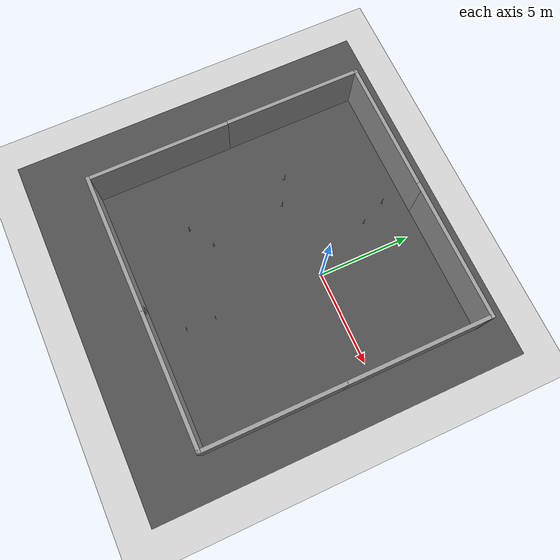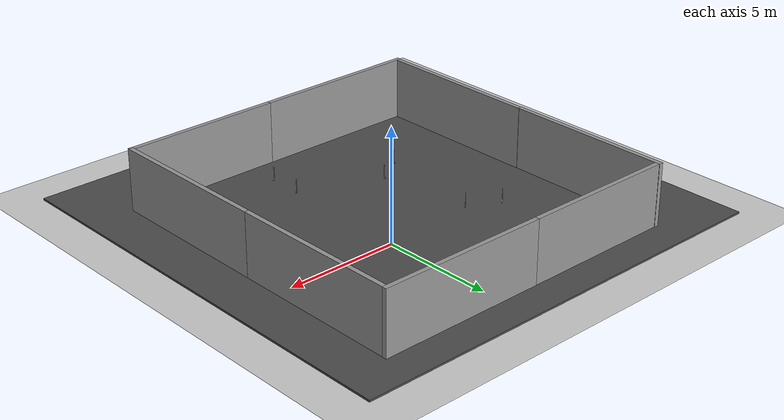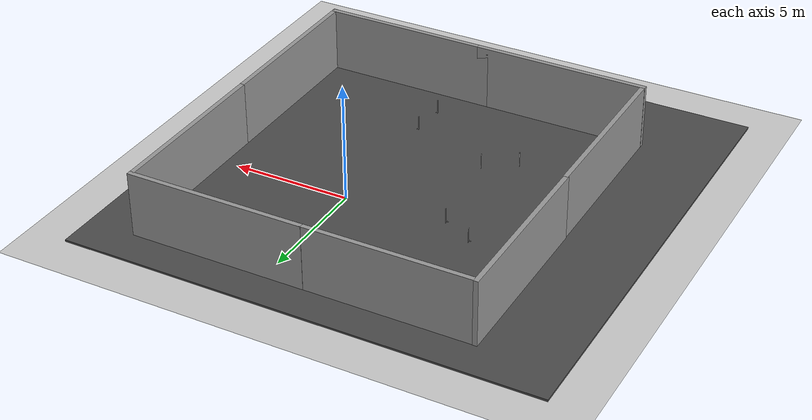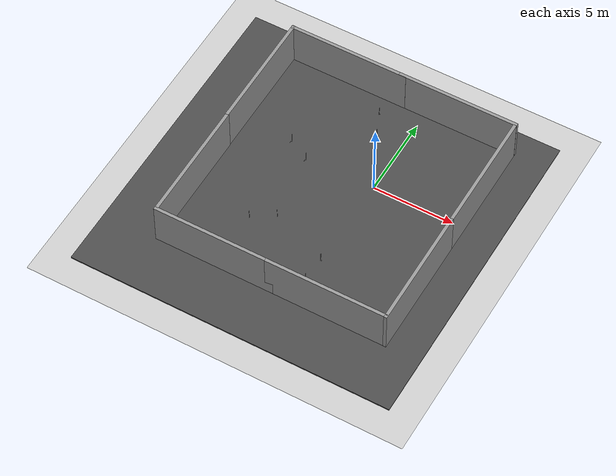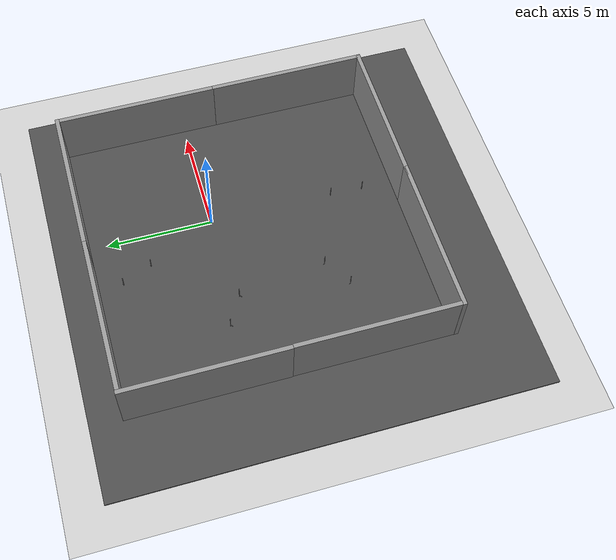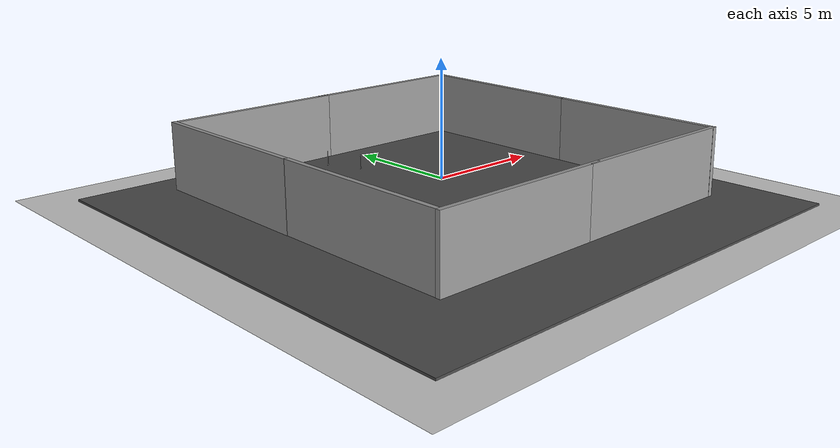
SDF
<sdf version="1.6">
 <world name="default">
  <light name="sun" type="directional">
   <pose>0 0 10 0 -0 0</pose>
   <diffuse>0.8 0.8 0.8 1</diffuse>
   <specular>0.1 0.1 0.1 1</specular>
   <attenuation>
    <range>1000</range>
    <constant>0.9</constant>
    <linear>0.01</linear>
    <quadratic>0.001</quadratic>
   </attenuation>
   <direction>-0.5 0.5 -1</direction>
  </light>
  <model name="ground_plane">
   <static>1</static>
   <link name="link">
    <collision name="collision">
     <geometry><plane><normal>0 0 1</normal><size>100 100</size></plane></geometry>
     <surface><friction><ode><mu>100</mu><mu2>50</mu2></ode></friction></surface>
    </collision>
    <visual name="visual">
     <cast_shadows>0</cast_shadows>
     <geometry><plane><normal>0 0 1</normal><size>100 100</size></plane></geometry>
     <material>
      <script><uri>file://media/materials/scripts/gazebo.material</uri><name>Gazebo/Grey</name></script>
     </material>
    </visual>
   </link>
  </model>
  <gravity>0 0 -9.8</gravity>
  <magnetic_field>6e-06 2.3e-05 -4.2e-05</magnetic_field>
  <atmosphere type="adiabatic"/>
  <physics name="default_physics" default="0" type="ode">
   <max_step_size>0.001</max_step_size>
   <real_time_factor>1</real_time_factor>
   <real_time_update_rate>1000</real_time_update_rate>
  </physics>
  <scene><ambient>0.4 0.4 0.4 1</ambient><background>0.7 0.7 0.7 1</background><shadows>1</shadows></scene>
  <spherical_coordinates>
   <surface_model>EARTH_WGS84</surface_model>
   <latitude_deg>0</latitude_deg>
   <longitude_deg>0</longitude_deg>
   <elevation>0</elevation>
   <heading_deg>0</heading_deg>
  </spherical_coordinates>
  <model name="grey_wall">
   <static>1</static>
   <link name="link">
    <pose>0 0 1.4 0 -0 0</pose>
    <collision name="collision"><geometry><box><size>7.5 0.2 2.8</size></box></geometry></collision>
    <visual name="visual">
     <cast_shadows>0</cast_shadows>
     <geometry><box><size>7.5 0.2 2.8</size></box></geometry>
     <material>
      <script>
       <uri>model://grey_wall/materials/scripts</uri>
       <uri>model://grey_wall/materials/textures</uri>
       <name>vrc/grey_wall</name>
      </script>
     </material>
    </visual>
   </link>
   <pose>-5 -9 0 0 -0 0</pose>
  </model>
  <model name="grey_wall_clone">
   <static>1</static>
   <link name="link">
    <pose>0 0 1.4 0 -0 0</pose>
    <collision name="collision"><geometry><box><size>7.5 0.2 2.8</size></box></geometry></collision>
    <visual name="visual">
     <cast_shadows>0</cast_shadows>
     <geometry><box><size>7.5 0.2 2.8</size></box></geometry>
     <material>
      <script>
       <uri>model://grey_wall/materials/scripts</uri>
       <uri>model://grey_wall/materials/textures</uri>
       <name>vrc/grey_wall</name>
      </script>
     </material>
    </visual>
   </link>
   <pose>2 -9 0 0 -0 0</pose>
  </model>
  <model name="grey_wall_clone_clone">
   <static>1</static>
   <link name="link">
    <pose>0 0 1.4 0 -0 0</pose>
    <collision name="collision"><geometry><box><size>7.5 0.2 2.8</size></box></geometry></collision>
    <visual name="visual">
     <cast_shadows>0</cast_shadows>
     <geometry><box><size>7.5 0.2 2.8</size></box></geometry>
     <material>
      <script>
       <uri>model://grey_wall/materials/scripts</uri>
       <uri>model://grey_wall/materials/textures</uri>
       <name>vrc/grey_wall</name>
      </script>
     </material>
    </visual>
   </link>
   <pose>5.6899 -5.35746 0 0 -0 1.5708</pose>
  </model>
  <model name="grey_wall_clone_clone_clone">
   <static>1</static>
   <link name="link">
    <pose>0 0 1.4 0 -0 0</pose>
    <collision name="collision"><geometry><box><size>7.5 0.2 2.8</size></box></geometry></collision>
    <visual name="visual">
     <cast_shadows>0</cast_shadows>
     <geometry><box><size>7.5 0.2 2.8</size></box></geometry>
     <material>
      <script>
       <uri>model://grey_wall/materials/scripts</uri>
       <uri>model://grey_wall/materials/textures</uri>
       <name>vrc/grey_wall</name>
      </script>
     </material>
    </visual>
   </link>
   <pose>5.68842 2.10974 0 0 -0 1.5708</pose>
  </model>
  <model name="grey_wall_clone_0">
   <static>1</static>
   <link name="link">
    <pose>0 0 1.4 0 -0 0</pose>
    <collision name="collision"><geometry><box><size>7.5 0.2 2.8</size></box></geometry></collision>
    <visual name="visual">
     <cast_shadows>0</cast_shadows>
     <geometry><box><size>7.5 0.2 2.8</size></box></geometry>
     <material>
      <script>
       <uri>model://grey_wall/materials/scripts</uri>
       <uri>model://grey_wall/materials/textures</uri>
       <name>vrc/grey_wall</name>
      </script>
     </material>
    </visual>
   </link>
   <pose>2.04633 5.92815 0 0 -0 0</pose>
  </model>
  <model name="grey_wall_clone_1">
   <static>1</static>
   <link name="link">
    <pose>0 0 1.4 0 -0 0</pose>
    <collision name="collision"><geometry><box><size>7.5 0.2 2.8</size></box></geometry></collision>
    <visual name="visual">
     <cast_shadows>0</cast_shadows>
     <geometry><box><size>7.5 0.2 2.8</size></box></geometry>
     <material>
      <script>
       <uri>model://grey_wall/materials/scripts</uri>
       <uri>model://grey_wall/materials/textures</uri>
       <name>vrc/grey_wall</name>
      </script>
     </material>
    </visual>
   </link>
   <pose>-5 5.9222 0 0 -0 0</pose>
  </model>
  <model name="grey_wall_clone_clone_clone_clone">
   <static>1</static>
   <link name="link">
    <pose>0 0 1.4 0 -0 0</pose>
    <collision name="collision"><geometry><box><size>7.5 0.2 2.8</size></box></geometry></collision>
    <visual name="visual">
     <cast_shadows>0</cast_shadows>
     <geometry><box><size>7.5 0.2 2.8</size></box></geometry>
     <material>
      <script>
       <uri>model://grey_wall/materials/scripts</uri>
       <uri>model://grey_wall/materials/textures</uri>
       <name>vrc/grey_wall</name>
      </script>
     </material>
    </visual>
   </link>
   <pose>-8.66195 2.28622 0 0 -0 1.5708</pose>
  </model>
  <model name="grey_wall_clone_clone_clone_clone_clone">
   <static>1</static>
   <link name="link">
    <pose>0 0 1.4 0 -0 0</pose>
    <collision name="collision"><geometry><box><size>7.5 0.2 2.8</size></box></geometry></collision>
    <visual name="visual">
     <cast_shadows>0</cast_shadows>
     <geometry><box><size>7.5 0.2 2.8</size></box></geometry>
     <material>
      <script>
       <uri>model://grey_wall/materials/scripts</uri>
       <uri>model://grey_wall/materials/textures</uri>
       <name>vrc/grey_wall</name>
      </script>
     </material>
    </visual>
   </link>
   <pose>-8.64242 -5.16594 0 0 -0 1.5708</pose>
  </model>
  <model name="gate_2">
   <static>1</static>
   <link name="gate">
    <visual name="visual">
     <pose>0 0 0 1.575 -0 0</pose>
     <geometry><mesh><uri>model://custom_gate/meshes/gate.obj</uri></mesh></geometry>
    </visual>
   </link>
   <pose>-0.129713 -6.65593 -0.072147 0 -0 1.52782</pose>
  </model>
  <model name="gate_2_clone">
   <static>1</static>
   <link name="gate">
    <visual name="visual">
     <pose>0 0 0 1.575 -0 0</pose>
     <geometry><mesh><uri>model://custom_gate/meshes/gate.obj</uri></mesh></geometry>
    </visual>
   </link>
   <pose>-4.952 0.146375 -0.036942 0 0 -0.51187</pose>
  </model>
  <model name="gate_2_clone_0">
   <static>1</static>
   <link name="gate">
    <visual name="visual">
     <pose>0 0 0 1.575 -0 0</pose>
     <geometry><mesh><uri>model://custom_gate/meshes/gate.obj</uri></mesh></geometry>
    </visual>
   </link>
   <pose>-1.96268 3.97621 -0.071238 0 -0 1.9984</pose>
  </model>
  <model name="gate_2_clone_1">
   <static>1</static>
   <link name="gate">
    <visual name="visual">
     <pose>0 0 0 1.575 -0 0</pose>
     <geometry><mesh><uri>model://custom_gate/meshes/gate.obj</uri></mesh></geometry>
    </visual>
   </link>
   <pose>-4.33541 -4.88076 -0.072712 0 0 -2.57399</pose>
  </model>
  <light name="user_spot_light_0" type="spot">
   <pose>-2.36563 -2.01312 1 0 -0 0</pose>
   <diffuse>0.5 0.5 0.5 1</diffuse>
   <specular>0.1 0.1 0.1 1</specular>
   <direction>0 0 -1</direction>
   <attenuation>
    <range>20</range>
    <constant>0.5</constant>
    <linear>0.01</linear>
    <quadratic>0.001</quadratic>
   </attenuation>
   <cast_shadows>0</cast_shadows>
   <spot><inner_angle>0.6</inner_angle><outer_angle>1</outer_angle><falloff>1</falloff></spot>
  </light>
  <model name="asphalt_plane">
   <static>1</static>
   <link name="link">
    <collision name="collision"><geometry><box><size>20 20 0.1</size></box></geometry></collision>
    <visual name="visual">
     <cast_shadows>0</cast_shadows>
     <geometry><box><size>20 20 0.1</size></box></geometry>
     <material>
      <script>
       <uri>model://asphalt_plane/materials/scripts</uri>
       <uri>model://asphalt_plane/materials/textures</uri>
       <name>vrc/asphalt</name>
      </script>
     </material>
    </visual>
   </link>
   <pose>-2.13133 -2.4989 0 0 -0 0</pose>
  </model>
 </world>
</sdf>
